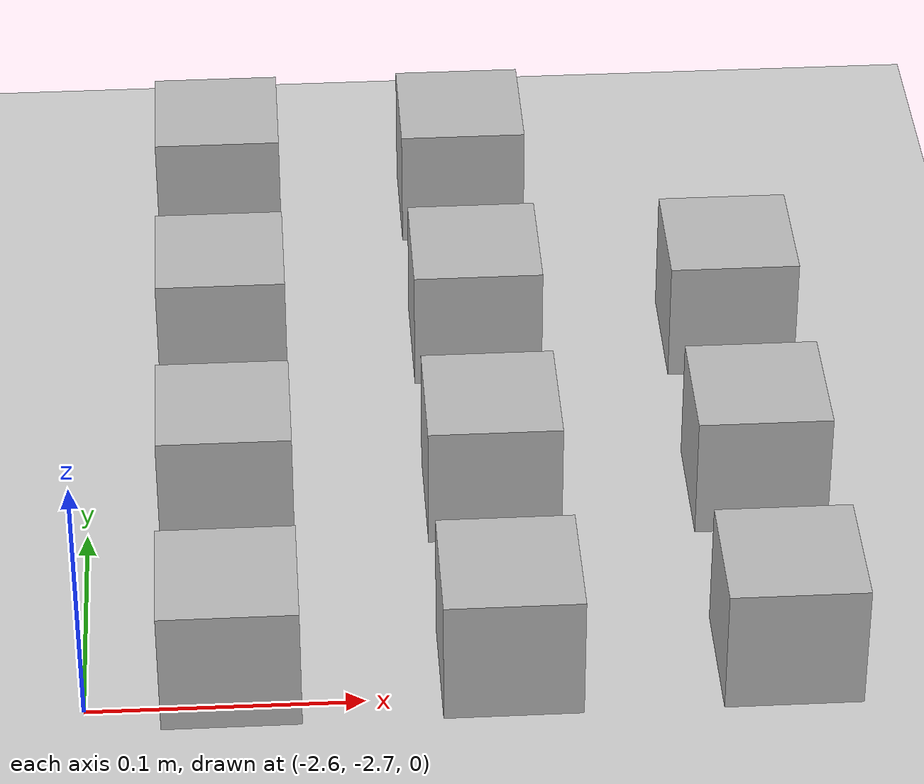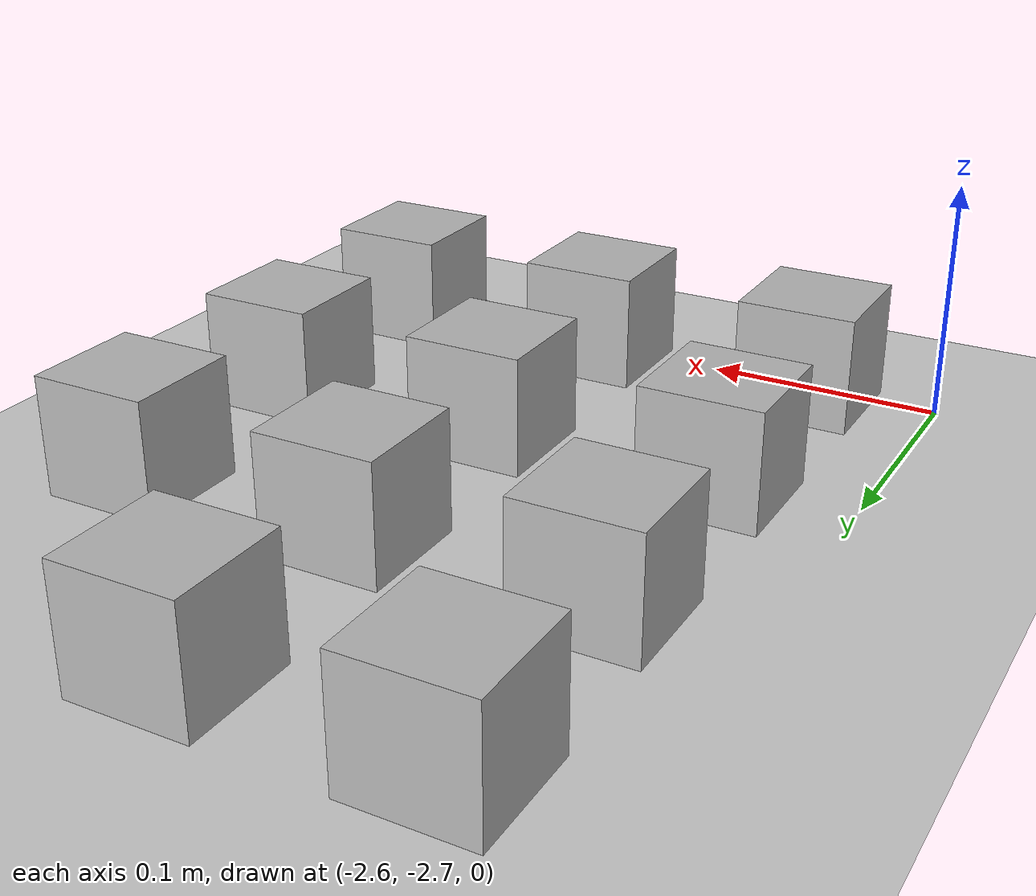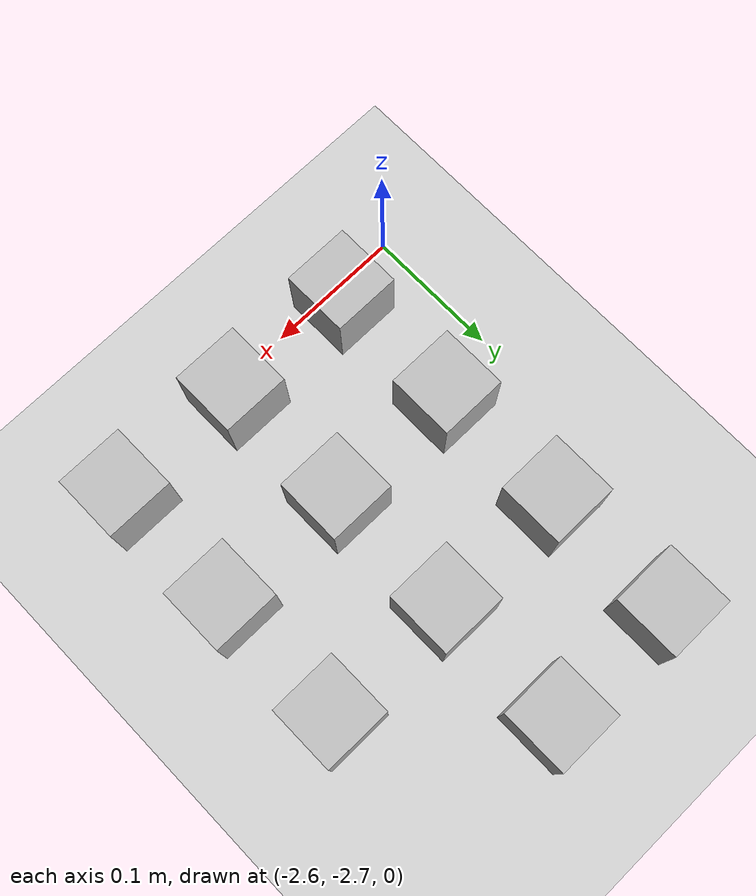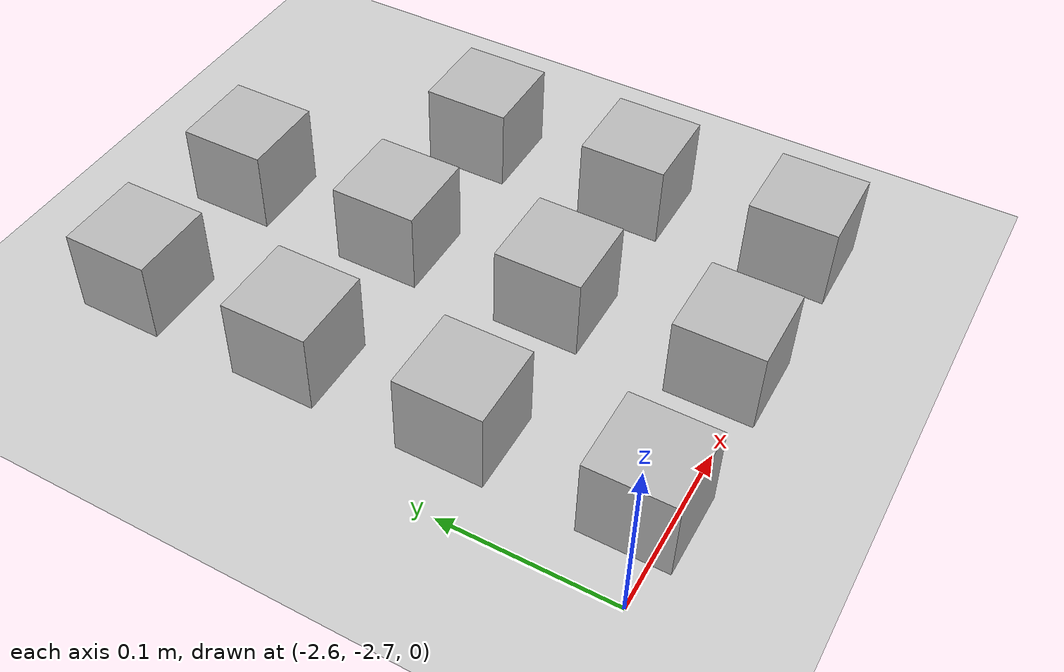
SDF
<sdf version="1.6">
 <world name="default">
  <model name="ground_plane">
   <static>1</static>
   <link name="link">
    <collision name="collision">
     <geometry><plane><normal>0 0 1</normal><size>100 100</size></plane></geometry>
     <surface><friction><ode><mu>100</mu><mu2>50</mu2></ode></friction></surface>
    </collision>
    <visual name="visual">
     <cast_shadows>0</cast_shadows>
     <geometry><plane><normal>0 0 1</normal><size>100 100</size></plane></geometry>
     <material>
      <script><uri>file://media/materials/scripts/gazebo.material</uri><name>Gazebo/Grey</name></script>
     </material>
    </visual>
   </link>
  </model>
  <model name="at32">
   <static>0</static>
   <link name="link">
    <inertial>
     <mass>0.01</mass>
     <inertia><ixx>4e-05</ixx><ixy>0</ixy><ixz>0</ixz><iyy>4e-05</iyy><iyz>0</iyz><izz>4e-05</izz></inertia>
    </inertial>
    <visual name="visual">
     <geometry><box><size>0.05 0.05 0.05</size></box></geometry>
     <material>
      <script>
       <uri>model://at0/materials/scripts</uri>
       <uri>model://at0/materials/textures</uri>
       <name>at0/Diffuse</name>
      </script>
     </material>
    </visual>
    <collision name="collision">
     <geometry><box><size>0.05 0.05 0.05</size></box></geometry>
     <surface><friction><ode><mu>0.8</mu><mu2>0.7</mu2></ode></friction></surface>
    </collision>
   </link>
   <pose>-2.54789 -2.68596 0.025 0 -0 0</pose>
  </model>
  <model name="at33">
   <static>0</static>
   <link name="link">
    <inertial>
     <mass>0.01</mass>
     <inertia><ixx>4e-05</ixx><ixy>0</ixy><ixz>0</ixz><iyy>4e-05</iyy><iyz>0</iyz><izz>4e-05</izz></inertia>
    </inertial>
    <visual name="visual">
     <geometry><box><size>0.05 0.05 0.05</size></box></geometry>
     <material>
      <script>
       <uri>model://at0/materials/scripts</uri>
       <uri>model://at0/materials/textures</uri>
       <name>at0/Diffuse</name>
      </script>
     </material>
    </visual>
    <collision name="collision">
     <geometry><box><size>0.05 0.05 0.05</size></box></geometry>
     <surface><friction><ode><mu>0.8</mu><mu2>0.7</mu2></ode></friction></surface>
    </collision>
   </link>
   <pose>-2.44789 -2.68596 0.025 0 -0 0</pose>
  </model>
  <model name="at34">
   <static>0</static>
   <link name="link">
    <inertial>
     <mass>0.01</mass>
     <inertia><ixx>4e-05</ixx><ixy>0</ixy><ixz>0</ixz><iyy>4e-05</iyy><iyz>0</iyz><izz>4e-05</izz></inertia>
    </inertial>
    <visual name="visual">
     <geometry><box><size>0.05 0.05 0.05</size></box></geometry>
     <material>
      <script>
       <uri>model://at0/materials/scripts</uri>
       <uri>model://at0/materials/textures</uri>
       <name>at0/Diffuse</name>
      </script>
     </material>
    </visual>
    <collision name="collision">
     <geometry><box><size>0.05 0.05 0.05</size></box></geometry>
     <surface><friction><ode><mu>0.8</mu><mu2>0.7</mu2></ode></friction></surface>
    </collision>
   </link>
   <pose>-2.34789 -2.68596 0.025 0 -0 0</pose>
  </model>
  <model name="at36">
   <static>0</static>
   <link name="link">
    <inertial>
     <mass>0.01</mass>
     <inertia><ixx>4e-05</ixx><ixy>0</ixy><ixz>0</ixz><iyy>4e-05</iyy><iyz>0</iyz><izz>4e-05</izz></inertia>
    </inertial>
    <visual name="visual">
     <geometry><box><size>0.05 0.05 0.05</size></box></geometry>
     <material>
      <script>
       <uri>model://at0/materials/scripts</uri>
       <uri>model://at0/materials/textures</uri>
       <name>at0/Diffuse</name>
      </script>
     </material>
    </visual>
    <collision name="collision">
     <geometry><box><size>0.05 0.05 0.05</size></box></geometry>
     <surface><friction><ode><mu>0.8</mu><mu2>0.7</mu2></ode></friction></surface>
    </collision>
   </link>
   <pose>-2.54789 -2.58596 0.025 0 -0 0</pose>
  </model>
  <model name="at37">
   <static>0</static>
   <link name="link">
    <inertial>
     <mass>0.01</mass>
     <inertia><ixx>4e-05</ixx><ixy>0</ixy><ixz>0</ixz><iyy>4e-05</iyy><iyz>0</iyz><izz>4e-05</izz></inertia>
    </inertial>
    <visual name="visual">
     <geometry><box><size>0.05 0.05 0.05</size></box></geometry>
     <material>
      <script>
       <uri>model://at0/materials/scripts</uri>
       <uri>model://at0/materials/textures</uri>
       <name>at0/Diffuse</name>
      </script>
     </material>
    </visual>
    <collision name="collision">
     <geometry><box><size>0.05 0.05 0.05</size></box></geometry>
     <surface><friction><ode><mu>0.8</mu><mu2>0.7</mu2></ode></friction></surface>
    </collision>
   </link>
   <pose>-2.44789 -2.58596 0.025 0 -0 0</pose>
  </model>
  <model name="at38">
   <static>0</static>
   <link name="link">
    <inertial>
     <mass>0.01</mass>
     <inertia><ixx>4e-05</ixx><ixy>0</ixy><ixz>0</ixz><iyy>4e-05</iyy><iyz>0</iyz><izz>4e-05</izz></inertia>
    </inertial>
    <visual name="visual">
     <geometry><box><size>0.05 0.05 0.05</size></box></geometry>
     <material>
      <script>
       <uri>model://at0/materials/scripts</uri>
       <uri>model://at0/materials/textures</uri>
       <name>at0/Diffuse</name>
      </script>
     </material>
    </visual>
    <collision name="collision">
     <geometry><box><size>0.05 0.05 0.05</size></box></geometry>
     <surface><friction><ode><mu>0.8</mu><mu2>0.7</mu2></ode></friction></surface>
    </collision>
   </link>
   <pose>-2.34789 -2.58596 0.025 0 -0 0</pose>
  </model>
  <model name="at40">
   <static>0</static>
   <link name="link">
    <inertial>
     <mass>0.01</mass>
     <inertia><ixx>4e-05</ixx><ixy>0</ixy><ixz>0</ixz><iyy>4e-05</iyy><iyz>0</iyz><izz>4e-05</izz></inertia>
    </inertial>
    <visual name="visual">
     <geometry><box><size>0.05 0.05 0.05</size></box></geometry>
     <material>
      <script>
       <uri>model://at0/materials/scripts</uri>
       <uri>model://at0/materials/textures</uri>
       <name>at0/Diffuse</name>
      </script>
     </material>
    </visual>
    <collision name="collision">
     <geometry><box><size>0.05 0.05 0.05</size></box></geometry>
     <surface><friction><ode><mu>0.8</mu><mu2>0.7</mu2></ode></friction></surface>
    </collision>
   </link>
   <pose>-2.54789 -2.48596 0.025 0 -0 0</pose>
  </model>
  <model name="at41">
   <static>0</static>
   <link name="link">
    <inertial>
     <mass>0.01</mass>
     <inertia><ixx>4e-05</ixx><ixy>0</ixy><ixz>0</ixz><iyy>4e-05</iyy><iyz>0</iyz><izz>4e-05</izz></inertia>
    </inertial>
    <visual name="visual">
     <geometry><box><size>0.05 0.05 0.05</size></box></geometry>
     <material>
      <script>
       <uri>model://at0/materials/scripts</uri>
       <uri>model://at0/materials/textures</uri>
       <name>at0/Diffuse</name>
      </script>
     </material>
    </visual>
    <collision name="collision">
     <geometry><box><size>0.05 0.05 0.05</size></box></geometry>
     <surface><friction><ode><mu>0.8</mu><mu2>0.7</mu2></ode></friction></surface>
    </collision>
   </link>
   <pose>-2.44789 -2.48596 0.025 0 -0 0</pose>
  </model>
  <model name="at42">
   <static>0</static>
   <link name="link">
    <inertial>
     <mass>0.01</mass>
     <inertia><ixx>4e-05</ixx><ixy>0</ixy><ixz>0</ixz><iyy>4e-05</iyy><iyz>0</iyz><izz>4e-05</izz></inertia>
    </inertial>
    <visual name="visual">
     <geometry><box><size>0.05 0.05 0.05</size></box></geometry>
     <material>
      <script>
       <uri>model://at0/materials/scripts</uri>
       <uri>model://at0/materials/textures</uri>
       <name>at0/Diffuse</name>
      </script>
     </material>
    </visual>
    <collision name="collision">
     <geometry><box><size>0.05 0.05 0.05</size></box></geometry>
     <surface><friction><ode><mu>0.8</mu><mu2>0.7</mu2></ode></friction></surface>
    </collision>
   </link>
   <pose>-2.34789 -2.48596 0.025 0 -0 0</pose>
  </model>
  <model name="at44">
   <static>0</static>
   <link name="link">
    <inertial>
     <mass>0.01</mass>
     <inertia><ixx>4e-05</ixx><ixy>0</ixy><ixz>0</ixz><iyy>4e-05</iyy><iyz>0</iyz><izz>4e-05</izz></inertia>
    </inertial>
    <visual name="visual">
     <geometry><box><size>0.05 0.05 0.05</size></box></geometry>
     <material>
      <script>
       <uri>model://at0/materials/scripts</uri>
       <uri>model://at0/materials/textures</uri>
       <name>at0/Diffuse</name>
      </script>
     </material>
    </visual>
    <collision name="collision">
     <geometry><box><size>0.05 0.05 0.05</size></box></geometry>
     <surface><friction><ode><mu>0.8</mu><mu2>0.7</mu2></ode></friction></surface>
    </collision>
   </link>
   <pose>-2.54789 -2.38596 0.025 0 -0 0</pose>
  </model>
  <model name="at45">
   <static>0</static>
   <link name="link">
    <inertial>
     <mass>0.01</mass>
     <inertia><ixx>4e-05</ixx><ixy>0</ixy><ixz>0</ixz><iyy>4e-05</iyy><iyz>0</iyz><izz>4e-05</izz></inertia>
    </inertial>
    <visual name="visual">
     <geometry><box><size>0.05 0.05 0.05</size></box></geometry>
     <material>
      <script>
       <uri>model://at0/materials/scripts</uri>
       <uri>model://at0/materials/textures</uri>
       <name>at0/Diffuse</name>
      </script>
     </material>
    </visual>
    <collision name="collision">
     <geometry><box><size>0.05 0.05 0.05</size></box></geometry>
     <surface><friction><ode><mu>0.8</mu><mu2>0.7</mu2></ode></friction></surface>
    </collision>
   </link>
   <pose>-2.44789 -2.38596 0.025 0 -0 0</pose>
  </model>
 </world>
</sdf>
